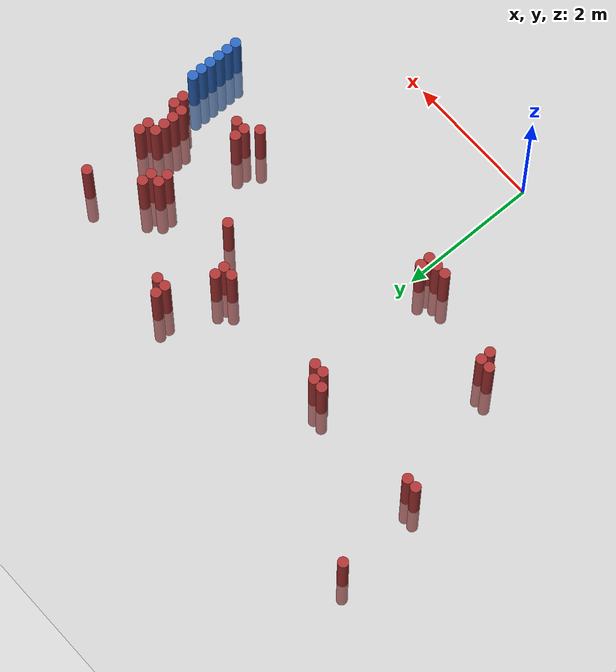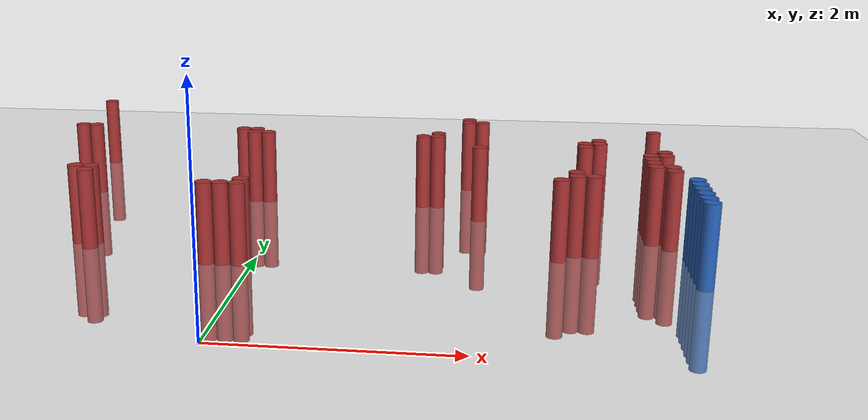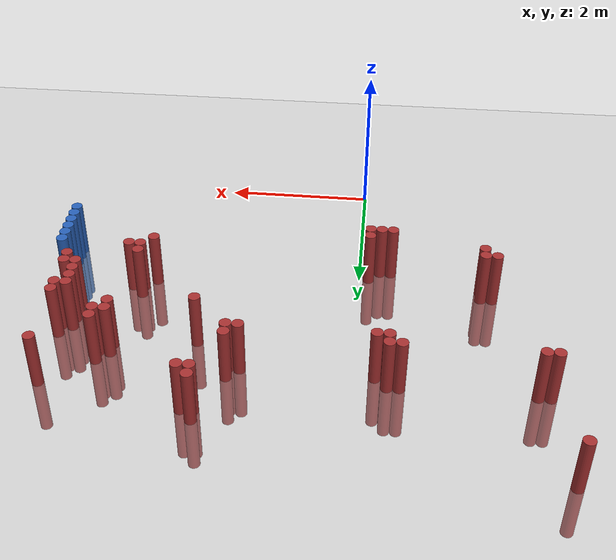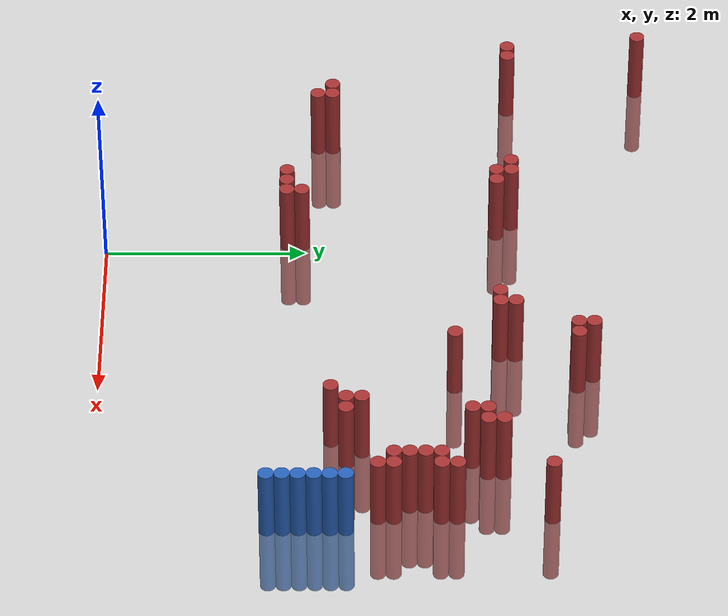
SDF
<sdf version="1.6">
 <world name="default">
  <model name="ground_plane">
   <static>1</static>
   <link name="link">
    <collision name="collision">
     <geometry><plane><normal>0 0 1</normal><size>100 100</size></plane></geometry>
     <surface><friction><ode><mu>100</mu><mu2>50</mu2></ode></friction></surface>
    </collision>
    <visual name="visual">
     <cast_shadows>0</cast_shadows>
     <geometry><plane><normal>0 0 1</normal><size>100 100</size></plane></geometry>
     <material>
      <script><uri>file://media/materials/scripts/gazebo.material</uri><name>Gazebo/Grey</name></script>
     </material>
    </visual>
   </link>
  </model>
  <model name="unit_cylinder_138">
   <static>1</static>
   <pose>3.925000 1.825000 0.000000 0.000000 0.000000 0.000000</pose>
   <link name="link">
    <inertial>
     <mass>1</mass>
     <inertia><ixx>0.145833</ixx><ixy>0</ixy><ixz>0</ixz><iyy>0.145833</iyy><iyz>0</iyz><izz>0.125</izz></inertia>
    </inertial>
    <collision name="collision">
     <geometry><cylinder><radius>0.075000</radius><length>1.5</length></cylinder></geometry>
    </collision>
    <visual name="visual">
     <geometry><cylinder><radius>0.075000</radius><length>1.5</length></cylinder></geometry>
     <material>
      <ambient>0.152000 0.379000 0.720000 1</ambient>
      <diffuse>0.152000 0.379000 0.720000 1</diffuse>
     </material>
     <material>
      <script><name>Gazebo/Grey</name><uri>file://media/materials/scripts/gazebo.material</uri></script>
     </material>
    </visual>
   </link>
  </model>
  <model name="unit_cylinder_140">
   <static>1</static>
   <pose>3.925000 1.975000 0.000000 0.000000 0.000000 0.000000</pose>
   <link name="link">
    <inertial>
     <mass>1</mass>
     <inertia><ixx>0.145833</ixx><ixy>0</ixy><ixz>0</ixz><iyy>0.145833</iyy><iyz>0</iyz><izz>0.125</izz></inertia>
    </inertial>
    <collision name="collision">
     <geometry><cylinder><radius>0.075000</radius><length>1.5</length></cylinder></geometry>
    </collision>
    <visual name="visual">
     <geometry><cylinder><radius>0.075000</radius><length>1.5</length></cylinder></geometry>
     <material>
      <ambient>0.152000 0.379000 0.720000 1</ambient>
      <diffuse>0.152000 0.379000 0.720000 1</diffuse>
     </material>
     <material>
      <script><name>Gazebo/Grey</name><uri>file://media/materials/scripts/gazebo.material</uri></script>
     </material>
    </visual>
   </link>
  </model>
  <model name="unit_cylinder_142">
   <static>1</static>
   <pose>3.925000 2.125000 0.000000 0.000000 0.000000 0.000000</pose>
   <link name="link">
    <inertial>
     <mass>1</mass>
     <inertia><ixx>0.145833</ixx><ixy>0</ixy><ixz>0</ixz><iyy>0.145833</iyy><iyz>0</iyz><izz>0.125</izz></inertia>
    </inertial>
    <collision name="collision">
     <geometry><cylinder><radius>0.075000</radius><length>1.5</length></cylinder></geometry>
    </collision>
    <visual name="visual">
     <geometry><cylinder><radius>0.075000</radius><length>1.5</length></cylinder></geometry>
     <material>
      <ambient>0.152000 0.379000 0.720000 1</ambient>
      <diffuse>0.152000 0.379000 0.720000 1</diffuse>
     </material>
     <material>
      <script><name>Gazebo/Grey</name><uri>file://media/materials/scripts/gazebo.material</uri></script>
     </material>
    </visual>
   </link>
  </model>
  <model name="unit_cylinder_144">
   <static>1</static>
   <pose>3.925000 2.275000 0.000000 0.000000 0.000000 0.000000</pose>
   <link name="link">
    <inertial>
     <mass>1</mass>
     <inertia><ixx>0.145833</ixx><ixy>0</ixy><ixz>0</ixz><iyy>0.145833</iyy><iyz>0</iyz><izz>0.125</izz></inertia>
    </inertial>
    <collision name="collision">
     <geometry><cylinder><radius>0.075000</radius><length>1.5</length></cylinder></geometry>
    </collision>
    <visual name="visual">
     <geometry><cylinder><radius>0.075000</radius><length>1.5</length></cylinder></geometry>
     <material>
      <ambient>0.152000 0.379000 0.720000 1</ambient>
      <diffuse>0.152000 0.379000 0.720000 1</diffuse>
     </material>
     <material>
      <script><name>Gazebo/Grey</name><uri>file://media/materials/scripts/gazebo.material</uri></script>
     </material>
    </visual>
   </link>
  </model>
  <model name="unit_cylinder_146">
   <static>1</static>
   <pose>3.925000 2.425000 0.000000 0.000000 0.000000 0.000000</pose>
   <link name="link">
    <inertial>
     <mass>1</mass>
     <inertia><ixx>0.145833</ixx><ixy>0</ixy><ixz>0</ixz><iyy>0.145833</iyy><iyz>0</iyz><izz>0.125</izz></inertia>
    </inertial>
    <collision name="collision">
     <geometry><cylinder><radius>0.075000</radius><length>1.5</length></cylinder></geometry>
    </collision>
    <visual name="visual">
     <geometry><cylinder><radius>0.075000</radius><length>1.5</length></cylinder></geometry>
     <material>
      <ambient>0.152000 0.379000 0.720000 1</ambient>
      <diffuse>0.152000 0.379000 0.720000 1</diffuse>
     </material>
     <material>
      <script><name>Gazebo/Grey</name><uri>file://media/materials/scripts/gazebo.material</uri></script>
     </material>
    </visual>
   </link>
  </model>
  <model name="unit_cylinder_293">
   <static>1</static>
   <pose>-2.525000 5.425000 0.000000 0.000000 0.000000 0.000000</pose>
   <link name="link">
    <inertial>
     <mass>1</mass>
     <inertia><ixx>0.145833</ixx><ixy>0</ixy><ixz>0</ixz><iyy>0.145833</iyy><iyz>0</iyz><izz>0.125</izz></inertia>
    </inertial>
    <collision name="collision">
     <geometry><cylinder><radius>0.075000</radius><length>1.5</length></cylinder></geometry>
    </collision>
    <visual name="visual">
     <geometry><cylinder><radius>0.075000</radius><length>1.5</length></cylinder></geometry>
     <material>
      <ambient>0.648000 0.192000 0.192000 1</ambient>
      <diffuse>0.648000 0.192000 0.192000 1</diffuse>
     </material>
     <material>
      <script><name>Gazebo/Grey</name><uri>file://media/materials/scripts/gazebo.material</uri></script>
     </material>
    </visual>
   </link>
  </model>
  <model name="unit_cylinder_300">
   <static>1</static>
   <pose>-2.375000 4.075000 0.000000 0.000000 0.000000 0.000000</pose>
   <link name="link">
    <inertial>
     <mass>1</mass>
     <inertia><ixx>0.145833</ixx><ixy>0</ixy><ixz>0</ixz><iyy>0.145833</iyy><iyz>0</iyz><izz>0.125</izz></inertia>
    </inertial>
    <collision name="collision">
     <geometry><cylinder><radius>0.075000</radius><length>1.5</length></cylinder></geometry>
    </collision>
    <visual name="visual">
     <geometry><cylinder><radius>0.075000</radius><length>1.5</length></cylinder></geometry>
     <material>
      <ambient>0.648000 0.192000 0.192000 1</ambient>
      <diffuse>0.648000 0.192000 0.192000 1</diffuse>
     </material>
     <material>
      <script><name>Gazebo/Grey</name><uri>file://media/materials/scripts/gazebo.material</uri></script>
     </material>
    </visual>
   </link>
  </model>
  <model name="unit_cylinder_308">
   <static>1</static>
   <pose>-2.225000 4.075000 0.000000 0.000000 0.000000 0.000000</pose>
   <link name="link">
    <inertial>
     <mass>1</mass>
     <inertia><ixx>0.145833</ixx><ixy>0</ixy><ixz>0</ixz><iyy>0.145833</iyy><iyz>0</iyz><izz>0.125</izz></inertia>
    </inertial>
    <collision name="collision">
     <geometry><cylinder><radius>0.075000</radius><length>1.5</length></cylinder></geometry>
    </collision>
    <visual name="visual">
     <geometry><cylinder><radius>0.075000</radius><length>1.5</length></cylinder></geometry>
     <material>
      <ambient>0.648000 0.192000 0.192000 1</ambient>
      <diffuse>0.648000 0.192000 0.192000 1</diffuse>
     </material>
     <material>
      <script><name>Gazebo/Grey</name><uri>file://media/materials/scripts/gazebo.material</uri></script>
     </material>
    </visual>
   </link>
  </model>
  <model name="unit_cylinder_315">
   <static>1</static>
   <pose>-1.775000 2.275000 0.000000 0.000000 0.000000 0.000000</pose>
   <link name="link">
    <inertial>
     <mass>1</mass>
     <inertia><ixx>0.145833</ixx><ixy>0</ixy><ixz>0</ixz><iyy>0.145833</iyy><iyz>0</iyz><izz>0.125</izz></inertia>
    </inertial>
    <collision name="collision">
     <geometry><cylinder><radius>0.075000</radius><length>1.5</length></cylinder></geometry>
    </collision>
    <visual name="visual">
     <geometry><cylinder><radius>0.075000</radius><length>1.5</length></cylinder></geometry>
     <material>
      <ambient>0.648000 0.192000 0.192000 1</ambient>
      <diffuse>0.648000 0.192000 0.192000 1</diffuse>
     </material>
     <material>
      <script><name>Gazebo/Grey</name><uri>file://media/materials/scripts/gazebo.material</uri></script>
     </material>
    </visual>
   </link>
  </model>
  <model name="unit_cylinder_316">
   <static>1</static>
   <pose>-1.625000 2.125000 0.000000 0.000000 0.000000 0.000000</pose>
   <link name="link">
    <inertial>
     <mass>1</mass>
     <inertia><ixx>0.145833</ixx><ixy>0</ixy><ixz>0</ixz><iyy>0.145833</iyy><iyz>0</iyz><izz>0.125</izz></inertia>
    </inertial>
    <collision name="collision">
     <geometry><cylinder><radius>0.075000</radius><length>1.5</length></cylinder></geometry>
    </collision>
    <visual name="visual">
     <geometry><cylinder><radius>0.075000</radius><length>1.5</length></cylinder></geometry>
     <material>
      <ambient>0.648000 0.192000 0.192000 1</ambient>
      <diffuse>0.648000 0.192000 0.192000 1</diffuse>
     </material>
     <material>
      <script><name>Gazebo/Grey</name><uri>file://media/materials/scripts/gazebo.material</uri></script>
     </material>
    </visual>
   </link>
  </model>
  <model name="unit_cylinder_317">
   <static>1</static>
   <pose>-1.625000 2.275000 0.000000 0.000000 0.000000 0.000000</pose>
   <link name="link">
    <inertial>
     <mass>1</mass>
     <inertia><ixx>0.145833</ixx><ixy>0</ixy><ixz>0</ixz><iyy>0.145833</iyy><iyz>0</iyz><izz>0.125</izz></inertia>
    </inertial>
    <collision name="collision">
     <geometry><cylinder><radius>0.075000</radius><length>1.5</length></cylinder></geometry>
    </collision>
    <visual name="visual">
     <geometry><cylinder><radius>0.075000</radius><length>1.5</length></cylinder></geometry>
     <material>
      <ambient>0.648000 0.192000 0.192000 1</ambient>
      <diffuse>0.648000 0.192000 0.192000 1</diffuse>
     </material>
     <material>
      <script><name>Gazebo/Grey</name><uri>file://media/materials/scripts/gazebo.material</uri></script>
     </material>
    </visual>
   </link>
  </model>
  <model name="unit_cylinder_333">
   <static>1</static>
   <pose>-0.575000 4.075000 0.000000 0.000000 0.000000 0.000000</pose>
   <link name="link">
    <inertial>
     <mass>1</mass>
     <inertia><ixx>0.145833</ixx><ixy>0</ixy><ixz>0</ixz><iyy>0.145833</iyy><iyz>0</iyz><izz>0.125</izz></inertia>
    </inertial>
    <collision name="collision">
     <geometry><cylinder><radius>0.075000</radius><length>1.5</length></cylinder></geometry>
    </collision>
    <visual name="visual">
     <geometry><cylinder><radius>0.075000</radius><length>1.5</length></cylinder></geometry>
     <material>
      <ambient>0.648000 0.192000 0.192000 1</ambient>
      <diffuse>0.648000 0.192000 0.192000 1</diffuse>
     </material>
     <material>
      <script><name>Gazebo/Grey</name><uri>file://media/materials/scripts/gazebo.material</uri></script>
     </material>
    </visual>
   </link>
  </model>
  <model name="unit_cylinder_348">
   <static>1</static>
   <pose>-0.425000 1.825000 0.000000 0.000000 0.000000 0.000000</pose>
   <link name="link">
    <inertial>
     <mass>1</mass>
     <inertia><ixx>0.145833</ixx><ixy>0</ixy><ixz>0</ixz><iyy>0.145833</iyy><iyz>0</iyz><izz>0.125</izz></inertia>
    </inertial>
    <collision name="collision">
     <geometry><cylinder><radius>0.075000</radius><length>1.5</length></cylinder></geometry>
    </collision>
    <visual name="visual">
     <geometry><cylinder><radius>0.075000</radius><length>1.5</length></cylinder></geometry>
     <material>
      <ambient>0.648000 0.192000 0.192000 1</ambient>
      <diffuse>0.648000 0.192000 0.192000 1</diffuse>
     </material>
     <material>
      <script><name>Gazebo/Grey</name><uri>file://media/materials/scripts/gazebo.material</uri></script>
     </material>
    </visual>
   </link>
  </model>
  <model name="unit_cylinder_349">
   <static>1</static>
   <pose>-0.425000 3.925000 0.000000 0.000000 0.000000 0.000000</pose>
   <link name="link">
    <inertial>
     <mass>1</mass>
     <inertia><ixx>0.145833</ixx><ixy>0</ixy><ixz>0</ixz><iyy>0.145833</iyy><iyz>0</iyz><izz>0.125</izz></inertia>
    </inertial>
    <collision name="collision">
     <geometry><cylinder><radius>0.075000</radius><length>1.5</length></cylinder></geometry>
    </collision>
    <visual name="visual">
     <geometry><cylinder><radius>0.075000</radius><length>1.5</length></cylinder></geometry>
     <material>
      <ambient>0.648000 0.192000 0.192000 1</ambient>
      <diffuse>0.648000 0.192000 0.192000 1</diffuse>
     </material>
     <material>
      <script><name>Gazebo/Grey</name><uri>file://media/materials/scripts/gazebo.material</uri></script>
     </material>
    </visual>
   </link>
  </model>
  <model name="unit_cylinder_350">
   <static>1</static>
   <pose>-0.425000 4.075000 0.000000 0.000000 0.000000 0.000000</pose>
   <link name="link">
    <inertial>
     <mass>1</mass>
     <inertia><ixx>0.145833</ixx><ixy>0</ixy><ixz>0</ixz><iyy>0.145833</iyy><iyz>0</iyz><izz>0.125</izz></inertia>
    </inertial>
    <collision name="collision">
     <geometry><cylinder><radius>0.075000</radius><length>1.5</length></cylinder></geometry>
    </collision>
    <visual name="visual">
     <geometry><cylinder><radius>0.075000</radius><length>1.5</length></cylinder></geometry>
     <material>
      <ambient>0.648000 0.192000 0.192000 1</ambient>
      <diffuse>0.648000 0.192000 0.192000 1</diffuse>
     </material>
     <material>
      <script><name>Gazebo/Grey</name><uri>file://media/materials/scripts/gazebo.material</uri></script>
     </material>
    </visual>
   </link>
  </model>
  <model name="unit_cylinder_363">
   <static>1</static>
   <pose>-0.275000 1.825000 0.000000 0.000000 0.000000 0.000000</pose>
   <link name="link">
    <inertial>
     <mass>1</mass>
     <inertia><ixx>0.145833</ixx><ixy>0</ixy><ixz>0</ixz><iyy>0.145833</iyy><iyz>0</iyz><izz>0.125</izz></inertia>
    </inertial>
    <collision name="collision">
     <geometry><cylinder><radius>0.075000</radius><length>1.5</length></cylinder></geometry>
    </collision>
    <visual name="visual">
     <geometry><cylinder><radius>0.075000</radius><length>1.5</length></cylinder></geometry>
     <material>
      <ambient>0.648000 0.192000 0.192000 1</ambient>
      <diffuse>0.648000 0.192000 0.192000 1</diffuse>
     </material>
     <material>
      <script><name>Gazebo/Grey</name><uri>file://media/materials/scripts/gazebo.material</uri></script>
     </material>
    </visual>
   </link>
  </model>
  <model name="unit_cylinder_364">
   <static>1</static>
   <pose>-0.275000 3.925000 0.000000 0.000000 0.000000 0.000000</pose>
   <link name="link">
    <inertial>
     <mass>1</mass>
     <inertia><ixx>0.145833</ixx><ixy>0</ixy><ixz>0</ixz><iyy>0.145833</iyy><iyz>0</iyz><izz>0.125</izz></inertia>
    </inertial>
    <collision name="collision">
     <geometry><cylinder><radius>0.075000</radius><length>1.5</length></cylinder></geometry>
    </collision>
    <visual name="visual">
     <geometry><cylinder><radius>0.075000</radius><length>1.5</length></cylinder></geometry>
     <material>
      <ambient>0.648000 0.192000 0.192000 1</ambient>
      <diffuse>0.648000 0.192000 0.192000 1</diffuse>
     </material>
     <material>
      <script><name>Gazebo/Grey</name><uri>file://media/materials/scripts/gazebo.material</uri></script>
     </material>
    </visual>
   </link>
  </model>
  <model name="unit_cylinder_370">
   <static>1</static>
   <pose>-0.125000 1.825000 0.000000 0.000000 0.000000 0.000000</pose>
   <link name="link">
    <inertial>
     <mass>1</mass>
     <inertia><ixx>0.145833</ixx><ixy>0</ixy><ixz>0</ixz><iyy>0.145833</iyy><iyz>0</iyz><izz>0.125</izz></inertia>
    </inertial>
    <collision name="collision">
     <geometry><cylinder><radius>0.075000</radius><length>1.5</length></cylinder></geometry>
    </collision>
    <visual name="visual">
     <geometry><cylinder><radius>0.075000</radius><length>1.5</length></cylinder></geometry>
     <material>
      <ambient>0.648000 0.192000 0.192000 1</ambient>
      <diffuse>0.648000 0.192000 0.192000 1</diffuse>
     </material>
     <material>
      <script><name>Gazebo/Grey</name><uri>file://media/materials/scripts/gazebo.material</uri></script>
     </material>
    </visual>
   </link>
  </model>
  <model name="unit_cylinder_371">
   <static>1</static>
   <pose>-0.125000 1.975000 0.000000 0.000000 0.000000 0.000000</pose>
   <link name="link">
    <inertial>
     <mass>1</mass>
     <inertia><ixx>0.145833</ixx><ixy>0</ixy><ixz>0</ixz><iyy>0.145833</iyy><iyz>0</iyz><izz>0.125</izz></inertia>
    </inertial>
    <collision name="collision">
     <geometry><cylinder><radius>0.075000</radius><length>1.5</length></cylinder></geometry>
    </collision>
    <visual name="visual">
     <geometry><cylinder><radius>0.075000</radius><length>1.5</length></cylinder></geometry>
     <material>
      <ambient>0.648000 0.192000 0.192000 1</ambient>
      <diffuse>0.648000 0.192000 0.192000 1</diffuse>
     </material>
     <material>
      <script><name>Gazebo/Grey</name><uri>file://media/materials/scripts/gazebo.material</uri></script>
     </material>
    </visual>
   </link>
  </model>
  <model name="unit_cylinder_400">
   <static>1</static>
   <pose>1.375000 3.925000 0.000000 0.000000 0.000000 0.000000</pose>
   <link name="link">
    <inertial>
     <mass>1</mass>
     <inertia><ixx>0.145833</ixx><ixy>0</ixy><ixz>0</ixz><iyy>0.145833</iyy><iyz>0</iyz><izz>0.125</izz></inertia>
    </inertial>
    <collision name="collision">
     <geometry><cylinder><radius>0.075000</radius><length>1.5</length></cylinder></geometry>
    </collision>
    <visual name="visual">
     <geometry><cylinder><radius>0.075000</radius><length>1.5</length></cylinder></geometry>
     <material>
      <ambient>0.648000 0.192000 0.192000 1</ambient>
      <diffuse>0.648000 0.192000 0.192000 1</diffuse>
     </material>
     <material>
      <script><name>Gazebo/Grey</name><uri>file://media/materials/scripts/gazebo.material</uri></script>
     </material>
    </visual>
   </link>
  </model>
  <model name="unit_cylinder_405">
   <static>1</static>
   <pose>1.525000 3.925000 0.000000 0.000000 0.000000 0.000000</pose>
   <link name="link">
    <inertial>
     <mass>1</mass>
     <inertia><ixx>0.145833</ixx><ixy>0</ixy><ixz>0</ixz><iyy>0.145833</iyy><iyz>0</iyz><izz>0.125</izz></inertia>
    </inertial>
    <collision name="collision">
     <geometry><cylinder><radius>0.075000</radius><length>1.5</length></cylinder></geometry>
    </collision>
    <visual name="visual">
     <geometry><cylinder><radius>0.075000</radius><length>1.5</length></cylinder></geometry>
     <material>
      <ambient>0.648000 0.192000 0.192000 1</ambient>
      <diffuse>0.648000 0.192000 0.192000 1</diffuse>
     </material>
     <material>
      <script><name>Gazebo/Grey</name><uri>file://media/materials/scripts/gazebo.material</uri></script>
     </material>
    </visual>
   </link>
  </model>
  <model name="unit_cylinder_406">
   <static>1</static>
   <pose>1.525000 4.075000 0.000000 0.000000 0.000000 0.000000</pose>
   <link name="link">
    <inertial>
     <mass>1</mass>
     <inertia><ixx>0.145833</ixx><ixy>0</ixy><ixz>0</ixz><iyy>0.145833</iyy><iyz>0</iyz><izz>0.125</izz></inertia>
    </inertial>
    <collision name="collision">
     <geometry><cylinder><radius>0.075000</radius><length>1.5</length></cylinder></geometry>
    </collision>
    <visual name="visual">
     <geometry><cylinder><radius>0.075000</radius><length>1.5</length></cylinder></geometry>
     <material>
      <ambient>0.648000 0.192000 0.192000 1</ambient>
      <diffuse>0.648000 0.192000 0.192000 1</diffuse>
     </material>
     <material>
      <script><name>Gazebo/Grey</name><uri>file://media/materials/scripts/gazebo.material</uri></script>
     </material>
    </visual>
   </link>
  </model>
  <model name="unit_cylinder_410">
   <static>1</static>
   <pose>1.825000 4.675000 0.000000 0.000000 0.000000 0.000000</pose>
   <link name="link">
    <inertial>
     <mass>1</mass>
     <inertia><ixx>0.145833</ixx><ixy>0</ixy><ixz>0</ixz><iyy>0.145833</iyy><iyz>0</iyz><izz>0.125</izz></inertia>
    </inertial>
    <collision name="collision">
     <geometry><cylinder><radius>0.075000</radius><length>1.5</length></cylinder></geometry>
    </collision>
    <visual name="visual">
     <geometry><cylinder><radius>0.075000</radius><length>1.5</length></cylinder></geometry>
     <material>
      <ambient>0.648000 0.192000 0.192000 1</ambient>
      <diffuse>0.648000 0.192000 0.192000 1</diffuse>
     </material>
     <material>
      <script><name>Gazebo/Grey</name><uri>file://media/materials/scripts/gazebo.material</uri></script>
     </material>
    </visual>
   </link>
  </model>
  <model name="unit_cylinder_411">
   <static>1</static>
   <pose>1.825000 4.825000 0.000000 0.000000 0.000000 0.000000</pose>
   <link name="link">
    <inertial>
     <mass>1</mass>
     <inertia><ixx>0.145833</ixx><ixy>0</ixy><ixz>0</ixz><iyy>0.145833</iyy><iyz>0</iyz><izz>0.125</izz></inertia>
    </inertial>
    <collision name="collision">
     <geometry><cylinder><radius>0.075000</radius><length>1.5</length></cylinder></geometry>
    </collision>
    <visual name="visual">
     <geometry><cylinder><radius>0.075000</radius><length>1.5</length></cylinder></geometry>
     <material>
      <ambient>0.648000 0.192000 0.192000 1</ambient>
      <diffuse>0.648000 0.192000 0.192000 1</diffuse>
     </material>
     <material>
      <script><name>Gazebo/Grey</name><uri>file://media/materials/scripts/gazebo.material</uri></script>
     </material>
    </visual>
   </link>
  </model>
  <model name="unit_cylinder_412">
   <static>1</static>
   <pose>1.975000 3.475000 0.000000 0.000000 0.000000 0.000000</pose>
   <link name="link">
    <inertial>
     <mass>1</mass>
     <inertia><ixx>0.145833</ixx><ixy>0</ixy><ixz>0</ixz><iyy>0.145833</iyy><iyz>0</iyz><izz>0.125</izz></inertia>
    </inertial>
    <collision name="collision">
     <geometry><cylinder><radius>0.075000</radius><length>1.5</length></cylinder></geometry>
    </collision>
    <visual name="visual">
     <geometry><cylinder><radius>0.075000</radius><length>1.5</length></cylinder></geometry>
     <material>
      <ambient>0.648000 0.192000 0.192000 1</ambient>
      <diffuse>0.648000 0.192000 0.192000 1</diffuse>
     </material>
     <material>
      <script><name>Gazebo/Grey</name><uri>file://media/materials/scripts/gazebo.material</uri></script>
     </material>
    </visual>
   </link>
  </model>
  <model name="unit_cylinder_413">
   <static>1</static>
   <pose>1.975000 4.675000 0.000000 0.000000 0.000000 0.000000</pose>
   <link name="link">
    <inertial>
     <mass>1</mass>
     <inertia><ixx>0.145833</ixx><ixy>0</ixy><ixz>0</ixz><iyy>0.145833</iyy><iyz>0</iyz><izz>0.125</izz></inertia>
    </inertial>
    <collision name="collision">
     <geometry><cylinder><radius>0.075000</radius><length>1.5</length></cylinder></geometry>
    </collision>
    <visual name="visual">
     <geometry><cylinder><radius>0.075000</radius><length>1.5</length></cylinder></geometry>
     <material>
      <ambient>0.648000 0.192000 0.192000 1</ambient>
      <diffuse>0.648000 0.192000 0.192000 1</diffuse>
     </material>
     <material>
      <script><name>Gazebo/Grey</name><uri>file://media/materials/scripts/gazebo.material</uri></script>
     </material>
    </visual>
   </link>
  </model>
  <model name="unit_cylinder_415">
   <static>1</static>
   <pose>2.725000 2.275000 0.000000 0.000000 0.000000 0.000000</pose>
   <link name="link">
    <inertial>
     <mass>1</mass>
     <inertia><ixx>0.145833</ixx><ixy>0</ixy><ixz>0</ixz><iyy>0.145833</iyy><iyz>0</iyz><izz>0.125</izz></inertia>
    </inertial>
    <collision name="collision">
     <geometry><cylinder><radius>0.075000</radius><length>1.5</length></cylinder></geometry>
    </collision>
    <visual name="visual">
     <geometry><cylinder><radius>0.075000</radius><length>1.5</length></cylinder></geometry>
     <material>
      <ambient>0.648000 0.192000 0.192000 1</ambient>
      <diffuse>0.648000 0.192000 0.192000 1</diffuse>
     </material>
     <material>
      <script><name>Gazebo/Grey</name><uri>file://media/materials/scripts/gazebo.material</uri></script>
     </material>
    </visual>
   </link>
  </model>
  <model name="unit_cylinder_418">
   <static>1</static>
   <pose>2.875000 2.425000 0.000000 0.000000 0.000000 0.000000</pose>
   <link name="link">
    <inertial>
     <mass>1</mass>
     <inertia><ixx>0.145833</ixx><ixy>0</ixy><ixz>0</ixz><iyy>0.145833</iyy><iyz>0</iyz><izz>0.125</izz></inertia>
    </inertial>
    <collision name="collision">
     <geometry><cylinder><radius>0.075000</radius><length>1.5</length></cylinder></geometry>
    </collision>
    <visual name="visual">
     <geometry><cylinder><radius>0.075000</radius><length>1.5</length></cylinder></geometry>
     <material>
      <ambient>0.648000 0.192000 0.192000 1</ambient>
      <diffuse>0.648000 0.192000 0.192000 1</diffuse>
     </material>
     <material>
      <script><name>Gazebo/Grey</name><uri>file://media/materials/scripts/gazebo.material</uri></script>
     </material>
    </visual>
   </link>
  </model>
  <model name="unit_cylinder_419">
   <static>1</static>
   <pose>2.875000 2.575000 0.000000 0.000000 0.000000 0.000000</pose>
   <link name="link">
    <inertial>
     <mass>1</mass>
     <inertia><ixx>0.145833</ixx><ixy>0</ixy><ixz>0</ixz><iyy>0.145833</iyy><iyz>0</iyz><izz>0.125</izz></inertia>
    </inertial>
    <collision name="collision">
     <geometry><cylinder><radius>0.075000</radius><length>1.5</length></cylinder></geometry>
    </collision>
    <visual name="visual">
     <geometry><cylinder><radius>0.075000</radius><length>1.5</length></cylinder></geometry>
     <material>
      <ambient>0.648000 0.192000 0.192000 1</ambient>
      <diffuse>0.648000 0.192000 0.192000 1</diffuse>
     </material>
     <material>
      <script><name>Gazebo/Grey</name><uri>file://media/materials/scripts/gazebo.material</uri></script>
     </material>
    </visual>
   </link>
  </model>
  <model name="unit_cylinder_421">
   <static>1</static>
   <pose>3.025000 2.425000 0.000000 0.000000 0.000000 0.000000</pose>
   <link name="link">
    <inertial>
     <mass>1</mass>
     <inertia><ixx>0.145833</ixx><ixy>0</ixy><ixz>0</ixz><iyy>0.145833</iyy><iyz>0</iyz><izz>0.125</izz></inertia>
    </inertial>
    <collision name="collision">
     <geometry><cylinder><radius>0.075000</radius><length>1.5</length></cylinder></geometry>
    </collision>
    <visual name="visual">
     <geometry><cylinder><radius>0.075000</radius><length>1.5</length></cylinder></geometry>
     <material>
      <ambient>0.648000 0.192000 0.192000 1</ambient>
      <diffuse>0.648000 0.192000 0.192000 1</diffuse>
     </material>
     <material>
      <script><name>Gazebo/Grey</name><uri>file://media/materials/scripts/gazebo.material</uri></script>
     </material>
    </visual>
   </link>
  </model>
  <model name="unit_cylinder_422">
   <static>1</static>
   <pose>3.025000 3.625000 0.000000 0.000000 0.000000 0.000000</pose>
   <link name="link">
    <inertial>
     <mass>1</mass>
     <inertia><ixx>0.145833</ixx><ixy>0</ixy><ixz>0</ixz><iyy>0.145833</iyy><iyz>0</iyz><izz>0.125</izz></inertia>
    </inertial>
    <collision name="collision">
     <geometry><cylinder><radius>0.075000</radius><length>1.5</length></cylinder></geometry>
    </collision>
    <visual name="visual">
     <geometry><cylinder><radius>0.075000</radius><length>1.5</length></cylinder></geometry>
     <material>
      <ambient>0.648000 0.192000 0.192000 1</ambient>
      <diffuse>0.648000 0.192000 0.192000 1</diffuse>
     </material>
     <material>
      <script><name>Gazebo/Grey</name><uri>file://media/materials/scripts/gazebo.material</uri></script>
     </material>
    </visual>
   </link>
  </model>
  <model name="unit_cylinder_423">
   <static>1</static>
   <pose>3.025000 3.775000 0.000000 0.000000 0.000000 0.000000</pose>
   <link name="link">
    <inertial>
     <mass>1</mass>
     <inertia><ixx>0.145833</ixx><ixy>0</ixy><ixz>0</ixz><iyy>0.145833</iyy><iyz>0</iyz><izz>0.125</izz></inertia>
    </inertial>
    <collision name="collision">
     <geometry><cylinder><radius>0.075000</radius><length>1.5</length></cylinder></geometry>
    </collision>
    <visual name="visual">
     <geometry><cylinder><radius>0.075000</radius><length>1.5</length></cylinder></geometry>
     <material>
      <ambient>0.648000 0.192000 0.192000 1</ambient>
      <diffuse>0.648000 0.192000 0.192000 1</diffuse>
     </material>
     <material>
      <script><name>Gazebo/Grey</name><uri>file://media/materials/scripts/gazebo.material</uri></script>
     </material>
    </visual>
   </link>
  </model>
  <model name="unit_cylinder_426">
   <static>1</static>
   <pose>3.175000 3.775000 0.000000 0.000000 0.000000 0.000000</pose>
   <link name="link">
    <inertial>
     <mass>1</mass>
     <inertia><ixx>0.145833</ixx><ixy>0</ixy><ixz>0</ixz><iyy>0.145833</iyy><iyz>0</iyz><izz>0.125</izz></inertia>
    </inertial>
    <collision name="collision">
     <geometry><cylinder><radius>0.075000</radius><length>1.5</length></cylinder></geometry>
    </collision>
    <visual name="visual">
     <geometry><cylinder><radius>0.075000</radius><length>1.5</length></cylinder></geometry>
     <material>
      <ambient>0.648000 0.192000 0.192000 1</ambient>
      <diffuse>0.648000 0.192000 0.192000 1</diffuse>
     </material>
     <material>
      <script><name>Gazebo/Grey</name><uri>file://media/materials/scripts/gazebo.material</uri></script>
     </material>
    </visual>
   </link>
  </model>
  <model name="unit_cylinder_427">
   <static>1</static>
   <pose>3.175000 3.925000 0.000000 0.000000 0.000000 0.000000</pose>
   <link name="link">
    <inertial>
     <mass>1</mass>
     <inertia><ixx>0.145833</ixx><ixy>0</ixy><ixz>0</ixz><iyy>0.145833</iyy><iyz>0</iyz><izz>0.125</izz></inertia>
    </inertial>
    <collision name="collision">
     <geometry><cylinder><radius>0.075000</radius><length>1.5</length></cylinder></geometry>
    </collision>
    <visual name="visual">
     <geometry><cylinder><radius>0.075000</radius><length>1.5</length></cylinder></geometry>
     <material>
      <ambient>0.648000 0.192000 0.192000 1</ambient>
      <diffuse>0.648000 0.192000 0.192000 1</diffuse>
     </material>
     <material>
      <script><name>Gazebo/Grey</name><uri>file://media/materials/scripts/gazebo.material</uri></script>
     </material>
    </visual>
   </link>
  </model>
  <model name="unit_cylinder_430">
   <static>1</static>
   <pose>3.625000 2.875000 0.000000 0.000000 0.000000 0.000000</pose>
   <link name="link">
    <inertial>
     <mass>1</mass>
     <inertia><ixx>0.145833</ixx><ixy>0</ixy><ixz>0</ixz><iyy>0.145833</iyy><iyz>0</iyz><izz>0.125</izz></inertia>
    </inertial>
    <collision name="collision">
     <geometry><cylinder><radius>0.075000</radius><length>1.5</length></cylinder></geometry>
    </collision>
    <visual name="visual">
     <geometry><cylinder><radius>0.075000</radius><length>1.5</length></cylinder></geometry>
     <material>
      <ambient>0.648000 0.192000 0.192000 1</ambient>
      <diffuse>0.648000 0.192000 0.192000 1</diffuse>
     </material>
     <material>
      <script><name>Gazebo/Grey</name><uri>file://media/materials/scripts/gazebo.material</uri></script>
     </material>
    </visual>
   </link>
  </model>
  <model name="unit_cylinder_431">
   <static>1</static>
   <pose>3.625000 3.025000 0.000000 0.000000 0.000000 0.000000</pose>
   <link name="link">
    <inertial>
     <mass>1</mass>
     <inertia><ixx>0.145833</ixx><ixy>0</ixy><ixz>0</ixz><iyy>0.145833</iyy><iyz>0</iyz><izz>0.125</izz></inertia>
    </inertial>
    <collision name="collision">
     <geometry><cylinder><radius>0.075000</radius><length>1.5</length></cylinder></geometry>
    </collision>
    <visual name="visual">
     <geometry><cylinder><radius>0.075000</radius><length>1.5</length></cylinder></geometry>
     <material>
      <ambient>0.648000 0.192000 0.192000 1</ambient>
      <diffuse>0.648000 0.192000 0.192000 1</diffuse>
     </material>
     <material>
      <script><name>Gazebo/Grey</name><uri>file://media/materials/scripts/gazebo.material</uri></script>
     </material>
    </visual>
   </link>
  </model>
  <model name="unit_cylinder_432">
   <static>1</static>
   <pose>3.625000 3.175000 0.000000 0.000000 0.000000 0.000000</pose>
   <link name="link">
    <inertial>
     <mass>1</mass>
     <inertia><ixx>0.145833</ixx><ixy>0</ixy><ixz>0</ixz><iyy>0.145833</iyy><iyz>0</iyz><izz>0.125</izz></inertia>
    </inertial>
    <collision name="collision">
     <geometry><cylinder><radius>0.075000</radius><length>1.5</length></cylinder></geometry>
    </collision>
    <visual name="visual">
     <geometry><cylinder><radius>0.075000</radius><length>1.5</length></cylinder></geometry>
     <material>
      <ambient>0.648000 0.192000 0.192000 1</ambient>
      <diffuse>0.648000 0.192000 0.192000 1</diffuse>
     </material>
     <material>
      <script><name>Gazebo/Grey</name><uri>file://media/materials/scripts/gazebo.material</uri></script>
     </material>
    </visual>
   </link>
  </model>
  <model name="unit_cylinder_433">
   <static>1</static>
   <pose>3.625000 3.325000 0.000000 0.000000 0.000000 0.000000</pose>
   <link name="link">
    <inertial>
     <mass>1</mass>
     <inertia><ixx>0.145833</ixx><ixy>0</ixy><ixz>0</ixz><iyy>0.145833</iyy><iyz>0</iyz><izz>0.125</izz></inertia>
    </inertial>
    <collision name="collision">
     <geometry><cylinder><radius>0.075000</radius><length>1.5</length></cylinder></geometry>
    </collision>
    <visual name="visual">
     <geometry><cylinder><radius>0.075000</radius><length>1.5</length></cylinder></geometry>
     <material>
      <ambient>0.648000 0.192000 0.192000 1</ambient>
      <diffuse>0.648000 0.192000 0.192000 1</diffuse>
     </material>
     <material>
      <script><name>Gazebo/Grey</name><uri>file://media/materials/scripts/gazebo.material</uri></script>
     </material>
    </visual>
   </link>
  </model>
  <model name="unit_cylinder_441">
   <static>1</static>
   <pose>3.775000 2.725000 0.000000 0.000000 0.000000 0.000000</pose>
   <link name="link">
    <inertial>
     <mass>1</mass>
     <inertia><ixx>0.145833</ixx><ixy>0</ixy><ixz>0</ixz><iyy>0.145833</iyy><iyz>0</iyz><izz>0.125</izz></inertia>
    </inertial>
    <collision name="collision">
     <geometry><cylinder><radius>0.075000</radius><length>1.5</length></cylinder></geometry>
    </collision>
    <visual name="visual">
     <geometry><cylinder><radius>0.075000</radius><length>1.5</length></cylinder></geometry>
     <material>
      <ambient>0.648000 0.192000 0.192000 1</ambient>
      <diffuse>0.648000 0.192000 0.192000 1</diffuse>
     </material>
     <material>
      <script><name>Gazebo/Grey</name><uri>file://media/materials/scripts/gazebo.material</uri></script>
     </material>
    </visual>
   </link>
  </model>
  <model name="unit_cylinder_442">
   <static>1</static>
   <pose>3.775000 2.875000 0.000000 0.000000 0.000000 0.000000</pose>
   <link name="link">
    <inertial>
     <mass>1</mass>
     <inertia><ixx>0.145833</ixx><ixy>0</ixy><ixz>0</ixz><iyy>0.145833</iyy><iyz>0</iyz><izz>0.125</izz></inertia>
    </inertial>
    <collision name="collision">
     <geometry><cylinder><radius>0.075000</radius><length>1.5</length></cylinder></geometry>
    </collision>
    <visual name="visual">
     <geometry><cylinder><radius>0.075000</radius><length>1.5</length></cylinder></geometry>
     <material>
      <ambient>0.648000 0.192000 0.192000 1</ambient>
      <diffuse>0.648000 0.192000 0.192000 1</diffuse>
     </material>
     <material>
      <script><name>Gazebo/Grey</name><uri>file://media/materials/scripts/gazebo.material</uri></script>
     </material>
    </visual>
   </link>
  </model>
  <model name="unit_cylinder_443">
   <static>1</static>
   <pose>3.775000 3.325000 0.000000 0.000000 0.000000 0.000000</pose>
   <link name="link">
    <inertial>
     <mass>1</mass>
     <inertia><ixx>0.145833</ixx><ixy>0</ixy><ixz>0</ixz><iyy>0.145833</iyy><iyz>0</iyz><izz>0.125</izz></inertia>
    </inertial>
    <collision name="collision">
     <geometry><cylinder><radius>0.075000</radius><length>1.5</length></cylinder></geometry>
    </collision>
    <visual name="visual">
     <geometry><cylinder><radius>0.075000</radius><length>1.5</length></cylinder></geometry>
     <material>
      <ambient>0.648000 0.192000 0.192000 1</ambient>
      <diffuse>0.648000 0.192000 0.192000 1</diffuse>
     </material>
     <material>
      <script><name>Gazebo/Grey</name><uri>file://media/materials/scripts/gazebo.material</uri></script>
     </material>
    </visual>
   </link>
  </model>
  <model name="unit_cylinder_444">
   <static>1</static>
   <pose>3.775000 3.475000 0.000000 0.000000 0.000000 0.000000</pose>
   <link name="link">
    <inertial>
     <mass>1</mass>
     <inertia><ixx>0.145833</ixx><ixy>0</ixy><ixz>0</ixz><iyy>0.145833</iyy><iyz>0</iyz><izz>0.125</izz></inertia>
    </inertial>
    <collision name="collision">
     <geometry><cylinder><radius>0.075000</radius><length>1.5</length></cylinder></geometry>
    </collision>
    <visual name="visual">
     <geometry><cylinder><radius>0.075000</radius><length>1.5</length></cylinder></geometry>
     <material>
      <ambient>0.648000 0.192000 0.192000 1</ambient>
      <diffuse>0.648000 0.192000 0.192000 1</diffuse>
     </material>
     <material>
      <script><name>Gazebo/Grey</name><uri>file://media/materials/scripts/gazebo.material</uri></script>
     </material>
    </visual>
   </link>
  </model>
  <model name="unit_cylinder_445">
   <static>1</static>
   <pose>3.775000 4.375000 0.000000 0.000000 0.000000 0.000000</pose>
   <link name="link">
    <inertial>
     <mass>1</mass>
     <inertia><ixx>0.145833</ixx><ixy>0</ixy><ixz>0</ixz><iyy>0.145833</iyy><iyz>0</iyz><izz>0.125</izz></inertia>
    </inertial>
    <collision name="collision">
     <geometry><cylinder><radius>0.075000</radius><length>1.5</length></cylinder></geometry>
    </collision>
    <visual name="visual">
     <geometry><cylinder><radius>0.075000</radius><length>1.5</length></cylinder></geometry>
     <material>
      <ambient>0.648000 0.192000 0.192000 1</ambient>
      <diffuse>0.648000 0.192000 0.192000 1</diffuse>
     </material>
     <material>
      <script><name>Gazebo/Grey</name><uri>file://media/materials/scripts/gazebo.material</uri></script>
     </material>
    </visual>
   </link>
  </model>
  <model name="unit_cylinder_470">
   <static>1</static>
   <pose>3.925000 1.675000 0.000000 0.000000 0.000000 0.000000</pose>
   <link name="link">
    <inertial>
     <mass>1</mass>
     <inertia><ixx>0.145833</ixx><ixy>0</ixy><ixz>0</ixz><iyy>0.145833</iyy><iyz>0</iyz><izz>0.125</izz></inertia>
    </inertial>
    <collision name="collision">
     <geometry><cylinder><radius>0.075000</radius><length>1.5</length></cylinder></geometry>
    </collision>
    <visual name="visual">
     <geometry><cylinder><radius>0.075000</radius><length>1.5</length></cylinder></geometry>
     <material>
      <ambient>0.152000 0.379000 0.720000 1</ambient>
      <diffuse>0.152000 0.379000 0.720000 1</diffuse>
     </material>
     <material>
      <script><name>Gazebo/Grey</name><uri>file://media/materials/scripts/gazebo.material</uri></script>
     </material>
    </visual>
   </link>
  </model>
  <model name="unit_cylinder_471">
   <static>1</static>
   <pose>3.925000 1.825000 0.000000 0.000000 0.000000 0.000000</pose>
   <link name="link">
    <inertial>
     <mass>1</mass>
     <inertia><ixx>0.145833</ixx><ixy>0</ixy><ixz>0</ixz><iyy>0.145833</iyy><iyz>0</iyz><izz>0.125</izz></inertia>
    </inertial>
    <collision name="collision">
     <geometry><cylinder><radius>0.075000</radius><length>1.5</length></cylinder></geometry>
    </collision>
    <visual name="visual">
     <geometry><cylinder><radius>0.075000</radius><length>1.5</length></cylinder></geometry>
     <material>
      <ambient>0.152000 0.379000 0.720000 1</ambient>
      <diffuse>0.152000 0.379000 0.720000 1</diffuse>
     </material>
     <material>
      <script><name>Gazebo/Grey</name><uri>file://media/materials/scripts/gazebo.material</uri></script>
     </material>
    </visual>
   </link>
  </model>
  <model name="unit_cylinder_472">
   <static>1</static>
   <pose>3.925000 1.975000 0.000000 0.000000 0.000000 0.000000</pose>
   <link name="link">
    <inertial>
     <mass>1</mass>
     <inertia><ixx>0.145833</ixx><ixy>0</ixy><ixz>0</ixz><iyy>0.145833</iyy><iyz>0</iyz><izz>0.125</izz></inertia>
    </inertial>
    <collision name="collision">
     <geometry><cylinder><radius>0.075000</radius><length>1.5</length></cylinder></geometry>
    </collision>
    <visual name="visual">
     <geometry><cylinder><radius>0.075000</radius><length>1.5</length></cylinder></geometry>
     <material>
      <ambient>0.152000 0.379000 0.720000 1</ambient>
      <diffuse>0.152000 0.379000 0.720000 1</diffuse>
     </material>
     <material>
      <script><name>Gazebo/Grey</name><uri>file://media/materials/scripts/gazebo.material</uri></script>
     </material>
    </visual>
   </link>
  </model>
  <model name="unit_cylinder_473">
   <static>1</static>
   <pose>3.925000 2.125000 0.000000 0.000000 0.000000 0.000000</pose>
   <link name="link">
    <inertial>
     <mass>1</mass>
     <inertia><ixx>0.145833</ixx><ixy>0</ixy><ixz>0</ixz><iyy>0.145833</iyy><iyz>0</iyz><izz>0.125</izz></inertia>
    </inertial>
    <collision name="collision">
     <geometry><cylinder><radius>0.075000</radius><length>1.5</length></cylinder></geometry>
    </collision>
    <visual name="visual">
     <geometry><cylinder><radius>0.075000</radius><length>1.5</length></cylinder></geometry>
     <material>
      <ambient>0.152000 0.379000 0.720000 1</ambient>
      <diffuse>0.152000 0.379000 0.720000 1</diffuse>
     </material>
     <material>
      <script><name>Gazebo/Grey</name><uri>file://media/materials/scripts/gazebo.material</uri></script>
     </material>
    </visual>
   </link>
  </model>
  <model name="unit_cylinder_474">
   <static>1</static>
   <pose>3.925000 2.275000 0.000000 0.000000 0.000000 0.000000</pose>
   <link name="link">
    <inertial>
     <mass>1</mass>
     <inertia><ixx>0.145833</ixx><ixy>0</ixy><ixz>0</ixz><iyy>0.145833</iyy><iyz>0</iyz><izz>0.125</izz></inertia>
    </inertial>
    <collision name="collision">
     <geometry><cylinder><radius>0.075000</radius><length>1.5</length></cylinder></geometry>
    </collision>
    <visual name="visual">
     <geometry><cylinder><radius>0.075000</radius><length>1.5</length></cylinder></geometry>
     <material>
      <ambient>0.152000 0.379000 0.720000 1</ambient>
      <diffuse>0.152000 0.379000 0.720000 1</diffuse>
     </material>
     <material>
      <script><name>Gazebo/Grey</name><uri>file://media/materials/scripts/gazebo.material</uri></script>
     </material>
    </visual>
   </link>
  </model>
  <model name="unit_cylinder_475">
   <static>1</static>
   <pose>3.925000 2.425000 0.000000 0.000000 0.000000 0.000000</pose>
   <link name="link">
    <inertial>
     <mass>1</mass>
     <inertia><ixx>0.145833</ixx><ixy>0</ixy><ixz>0</ixz><iyy>0.145833</iyy><iyz>0</iyz><izz>0.125</izz></inertia>
    </inertial>
    <collision name="collision">
     <geometry><cylinder><radius>0.075000</radius><length>1.5</length></cylinder></geometry>
    </collision>
    <visual name="visual">
     <geometry><cylinder><radius>0.075000</radius><length>1.5</length></cylinder></geometry>
     <material>
      <ambient>0.152000 0.379000 0.720000 1</ambient>
      <diffuse>0.152000 0.379000 0.720000 1</diffuse>
     </material>
     <material>
      <script><name>Gazebo/Grey</name><uri>file://media/materials/scripts/gazebo.material</uri></script>
     </material>
    </visual>
   </link>
  </model>
 </world>
</sdf>
